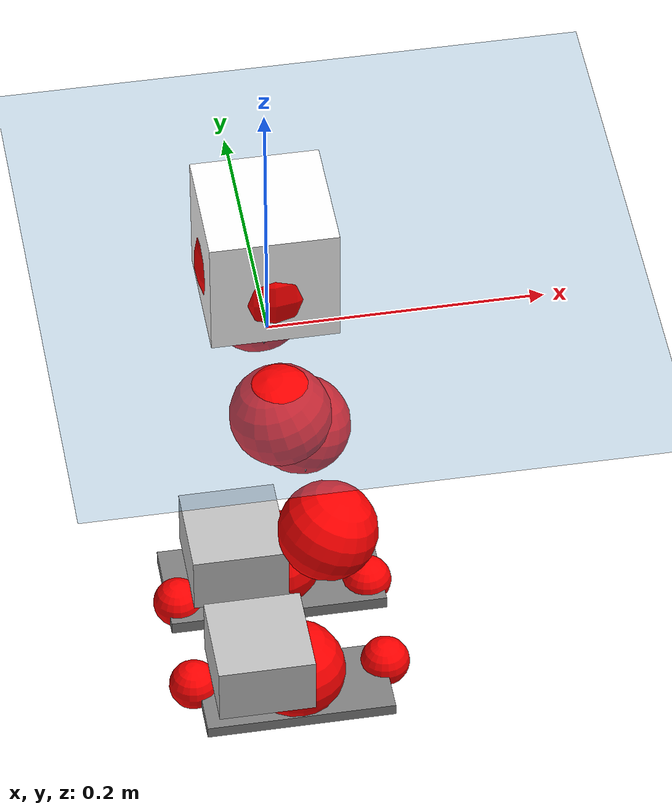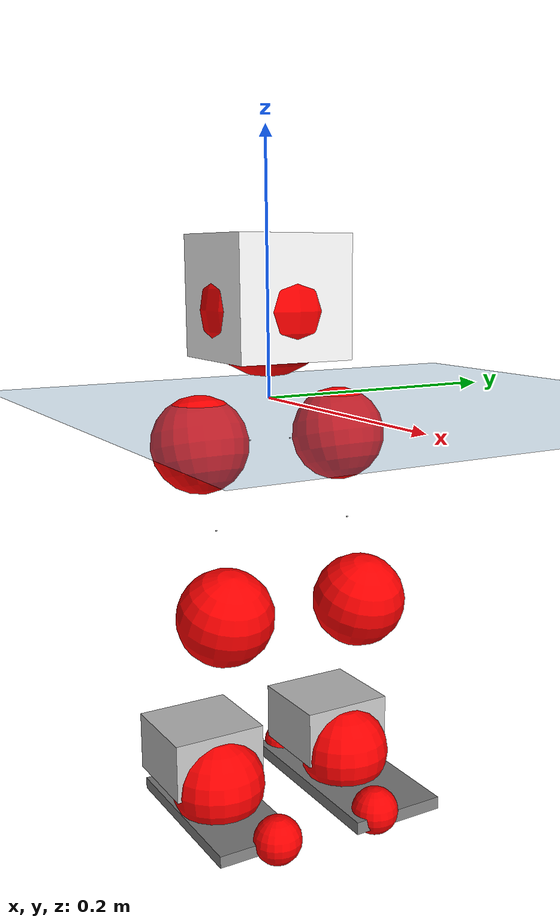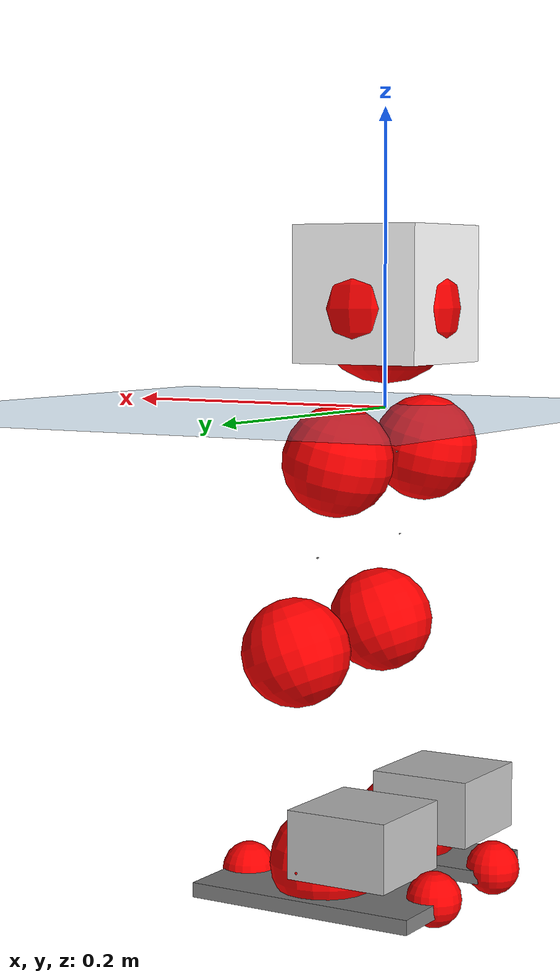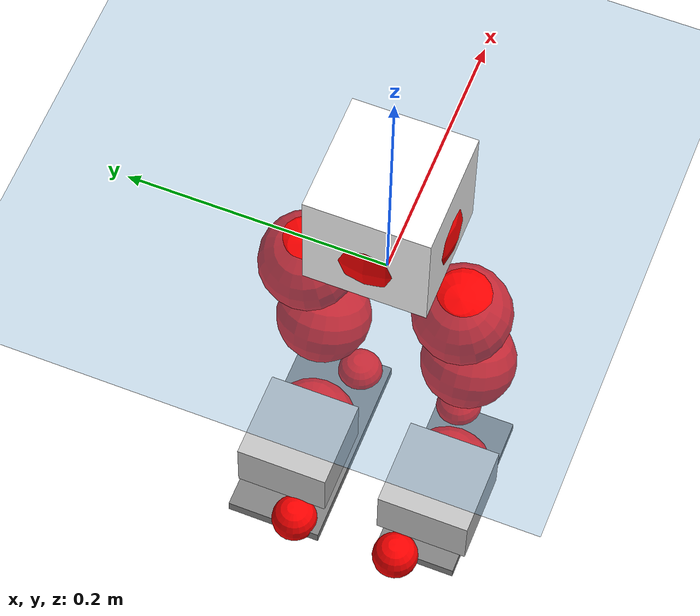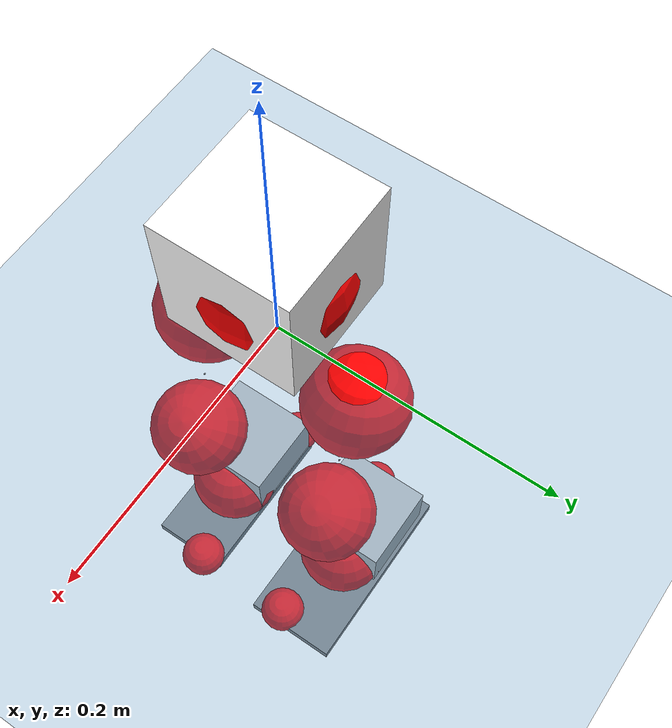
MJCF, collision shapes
<mujoco model="pi_12dof_release_v1">
  <compiler angle="radian" assetdir="assets" balanceinertia="true" inertiafromgeom="false"/>

  <option timestep="0.005" density="1.2" viscosity="2e-05"/>

  <size nkey="1"/>

  <visual>
    <quality shadowsize="8192"/>
    <map shadowclip="0.5"/>
  </visual>

  <default>
    <default class="/">
      <joint armature="0.01" damping="0.01" frictionloss="0.01"/>
      <geom contype="0" conaffinity="0" group="1" solref="-1000 -80"/>
      <site size="0.01 0.005 0.005" group="5"/>
      <general forcelimited="true" biastype="affine" gainprm="20" biasprm="0 -20 -0.5"/>
      <default class="foot">
        <geom size="0.0845 0.036 0.005" type="box" condim="6" group="4" priority="1" friction="0.9 0.2 0.2" solimp="0.015 1 0.005"/>
      </default>
      <default class="reward_collision_sphere">
        <geom group="5" rgba="1 0 0 1"/>
      </default>
    </default>
  </default>

  <asset>
    <texture type="skybox" colorspace="auto" name="//unnamed_texture_0" builtin="gradient" rgb1="0.95 0.95 0.95" rgb2="0.95 0.95 0.95" width="100" height="600"/>
    <texture type="2d" colorspace="auto" name="texplane" builtin="checker" rgb1="0.345 0.575 0.748" rgb2="0.345 0.575 0.748" markrgb="1 1 1" width="512" height="512"/>
    <material name="MatPlane" class="/" texture="texplane" texuniform="true" texrepeat="2 2" specular="0.9"/>
    <mesh name="baselink_1" class="/" file="baselink_1.STL"/>
    <mesh name="r_hip_pitch_link" class="/" file="r_hip_pitch_link.STL"/>
    <mesh name="r_hip_roll_link" class="/" file="r_hip_roll_link.STL"/>
    <mesh name="r_thigh_link" class="/" file="r_thigh_link.STL"/>
    <mesh name="r_calf_link" class="/" file="r_calf_link.STL"/>
    <mesh name="r_ankle_pitch_link" class="/" file="r_ankle_pitch_link.STL"/>
    <mesh name="r_ankle_roll_link" class="/" file="r_ankle_roll_link.STL"/>
    <mesh name="l_hip_pitch_link" class="/" file="l_hip_pitch_link.STL"/>
    <mesh name="l_hip_roll_link" class="/" file="l_hip_roll_link.STL"/>
    <mesh name="l_thigh_link" class="/" file="l_thigh_link.STL"/>
    <mesh name="l_calf_link" class="/" file="l_calf_link.STL"/>
    <mesh name="l_ankle_pitch_link" class="/" file="l_ankle_pitch_link.STL"/>
    <mesh name="l_ankle_roll_link" class="/" file="l_ankle_roll_link.STL"/>
  </asset>

  <worldbody>
    <geom name="floor" class="/" size="100 100 0.125" type="plane" group="0" material="MatPlane"/>
    <light name="toplight_shadow" class="/" pos="0 0 5" dir="0.0990148 0.0990148 -0.990148" type="directional" ambient="0.04 0.04 0.04" diffuse="0.55 0.55 0.55" specular="0.12 0.12 0.12"/>
    <light name="toplight_fill" class="/" pos="0 0 5" dir="0.0990148 0.0990148 -0.990148" type="directional" castshadow="false" ambient="0.04 0.04 0.04" diffuse="0.3 0.3 0.3" specular="0.08 0.08 0.08"/>
    <body name="trunk" pos="-0.000809849 0.000145348 0.000491434" quat="1 7.82045e-05 0.000100903 -5.90944e-05">
      <inertial pos="0.00283084 -0.00121955 0.0388875" quat="0.695798 0.0154673 0.00496562 0.718053" mass="1.66137" diaginertia="0.0134822 0.00212272 0.00322352"/>
      <joint name="//unnamed_joint_0" type="free"/>
      <geom name="//unnamed_geom_1" class="/" type="mesh" density="0" rgba="1 1 1 1" mesh="baselink_1"/>
      <geom name="//unnamed_geom_2" class="/" size="0.0459591 0.0459591 0.0459591" pos="0 0 0.0757106" type="box" rgba="1 1 1 1"/>
      <geom name="//unnamed_geom_3" class="reward_collision_sphere" size="0.050555" pos="0 0 0.0662468"/>
      <site name="imu" class="/" pos="-0.00105332 -0.0124432 0.00511362" size="0.00919182"/>
      <camera name="track" class="/" pos="0 -1.49802 0" quat="0.707107 0.707107 0 0" mode="trackcom"/>
      <camera name="ego_camera" class="/" pos="0.0796615 0 0.170349" quat="-0.5 -0.5 0.5 0.5"/>
      <body name="r_hip_pitch_link" pos="0.000441583 -0.0166509 -0.0315759" quat="0.992076 -0.000270551 -0.125636 0.000607788">
        <inertial pos="0.00138553 -0.0423863 0.000364958" quat="-0.021005 0.708308 -0.0307019 0.704923" mass="0.295483" diaginertia="0.000150765 2.3772e-05 6.44315e-05"/>
        <joint name="r_hip_pitch_joint" class="/" pos="0 0 0" axis="-0.00204868 -0.999974 -0.00695449" range="-1.75177 1.26194" armature="0.00933484" damping="0.00948784" frictionloss="0.00876058"/>
        <geom name="//unnamed_geom_4" class="/" type="mesh" density="0" rgba="0.75294 0.75294 0.75294 1" mesh="r_hip_pitch_link"/>
        <geom name="//unnamed_geom_5" class="/" size="0.000459591 0.000459591 0.000459591" type="box" rgba="0.75294 0.75294 0.75294 1"/>
        <body name="r_hip_roll_link" pos="0.000265548 -0.0414998 0.000137262" quat="1 -0.00012957 -3.28327e-05 -8.92293e-05">
          <inertial pos="-0.00124078 -0.002416 -0.0605725" quat="0.707779 -0.0819783 -0.0849119 0.696504" mass="0.303894" diaginertia="0.000453164 6.61029e-05 9.75542e-05"/>
          <joint name="r_hip_roll_joint" class="/" pos="0 0 0" axis="-0.999989 -0.00349138 0.00303039" range="-0.112892 0.539114" armature="0.00865869" damping="0.0114617" frictionloss="0.00966614"/>
          <geom name="//unnamed_geom_6" class="/" type="mesh" density="0" rgba="0.75294 0.75294 0.75294 1" mesh="r_hip_roll_link"/>
          <geom name="//unnamed_geom_7" class="/" size="0.000459591 0.000459591 0.000459591" type="box" rgba="0.75294 0.75294 0.75294 1"/>
          <geom name="//unnamed_geom_8" class="reward_collision_sphere" size="0.0367673"/>
          <body name="r_thigh_link" pos="0.00212836 0.00294762 -0.0644662" quat="1 7.66567e-05 7.4795e-06 0.000112723">
            <inertial pos="0.00106957 0.000826047 -0.0445306" quat="0.737076 0.675809 -0.000809774 0.000624095" mass="0.0895696" diaginertia="0.000169784 2.24306e-05 4.39416e-05"/>
            <joint name="r_thigh_joint" class="/" pos="0 0 0" axis="-0.00438465 -0.000121834 -0.99999" stiffness="0.0035804" range="-0.320691 0.576143" armature="0.00905765" damping="0" frictionloss="0.00804464"/>
            <geom name="//unnamed_geom_9" class="/" type="mesh" density="0" rgba="0.75294 0.75294 0.75294 1" mesh="r_thigh_link"/>
            <geom name="//unnamed_geom_10" class="/" size="0.000459591 0.000459591 0.000459591" type="box" rgba="0.75294 0.75294 0.75294 1"/>
            <body name="r_calf_link" pos="-0.00034776 -0.00127373 -0.0644134" quat="0.947648 -8.75276e-06 0.319318 -5.26025e-05">
              <inertial pos="0.000767981 -0.00105098 -0.0663012" quat="0.999885 -0.000416267 -0.000130643 0.0151412" mass="0.64803" diaginertia="0.00491945 0.000838827 0.000135807"/>
              <joint name="r_calf_joint" class="/" pos="0 0 0" axis="0.00411251 -0.999975 0.00568461" range="-1.60893 0.650429" armature="0.00858581" damping="0.0103933" frictionloss="0.00926109"/>
              <geom name="//unnamed_geom_11" class="/" type="mesh" density="0" rgba="0.75294 0.75294 0.75294 1" mesh="r_calf_link"/>
              <geom name="//unnamed_geom_12" class="/" size="0.000459591 0.000459591 0.000459591" type="box" rgba="0.75294 0.75294 0.75294 1"/>
              <geom name="//unnamed_geom_13" class="reward_collision_sphere" size="0.0367673"/>
              <body name="r_ankle_pitch_link" pos="0.000770889 0.000934272 -0.133609" quat="0.980103 -0.000250056 -0.198488 -0.000440157">
                <inertial pos="0.00546859 0.00272216 -0.00254599" quat="0.0143737 0.706803 -0.00533164 0.707244" mass="0.138669" diaginertia="0.000429586 5.3701e-05 9.33952e-05"/>
                <joint name="r_ankle_pitch_joint" class="/" pos="0 0 0" axis="0.00389986 -0.999984 -0.00416284" range="-1.294 0.549491" armature="0.0092463" damping="0.00995956" frictionloss="0.0100286"/>
                <geom name="//unnamed_geom_14" class="/" type="mesh" density="0" rgba="0.75294 0.75294 0.75294 1" mesh="r_ankle_pitch_link"/>
                <geom name="//unnamed_geom_15" class="/" size="0.0358481 0.0367673 0.0229796" type="box" rgba="0.75294 0.75294 0.75294 1"/>
                <body name="r_ankle_roll_link" pos="0.0801645 0.00145449 -0.00110863" quat="1 0.000121218 -6.5054e-05 1.18276e-05">
                  <inertial pos="-0.025544 0.000450337 -0.0112686" quat="0.559024 0.431543 0.433686 0.559624" mass="0.384223" diaginertia="0.001465 0.000242758 0.000202963"/>
                  <joint name="r_ankle_roll_joint" class="/" pos="0 0 0" axis="-0.999935 -0.00291254 0.011015" range="-0.14308 0.114677" armature="0.00816159" damping="0.0146748" frictionloss="0.00929552"/>
                  <geom name="//unnamed_geom_16" class="/" type="mesh" density="0" rgba="0.75294 0.75294 0.75294 1" mesh="r_ankle_roll_link"/>
                  <geom name="//unnamed_geom_17" class="/" type="mesh" rgba="0.75294 0.75294 0.75294 1" mesh="r_ankle_roll_link"/>
                  <geom name="right_foot" class="foot" size="0.0700761 0.0320497 0.00453223" pos="-0.0541698 0 -0.0416409"/>
                  <geom name="//unnamed_geom_19" class="reward_collision_sphere" size="0.0367673" pos="-0.0531077 0 -0.0189277"/>
                  <geom name="//unnamed_geom_20" class="reward_collision_sphere" size="0.0183836" pos="0.0159323 0.0149802 -0.0378553"/>
                  <geom name="//unnamed_geom_21" class="reward_collision_sphere" size="0.0183836" pos="-0.127458 0.0149802 -0.0378553"/>
                  <site name="right_foot" class="foot" pos="-0.0541698 0 -0.0416409" size="0.00919182"/>
                </body>
              </body>
            </body>
          </body>
        </body>
      </body>
      <body name="l_hip_pitch_link" pos="0.00095081 0.0180675 -0.0329347" quat="0.992178 -0.000196432 -0.124832 -1.42305e-05">
        <inertial pos="0.00115616 0.0397399 -0.00216367" quat="-0.0374163 0.705584 0.0297705 0.707012" mass="0.309103" diaginertia="0.000176604 2.45058e-05 7.6645e-05"/>
        <joint name="l_hip_pitch_joint" class="/" pos="0 0 0" axis="-0.00321277 0.999994 -0.00113256" stiffness="0.00087263" range="-1.22609 1.7639" armature="0.00971221" damping="0.0136153" frictionloss="0.00916773"/>
        <geom name="//unnamed_geom_22" class="/" type="mesh" density="0" rgba="0.75294 0.75294 0.75294 1" mesh="l_hip_pitch_link"/>
        <geom name="//unnamed_geom_23" class="/" size="0.000459591 0.000459591 0.000459591" type="box" rgba="0.75294 0.75294 0.75294 1"/>
        <body name="l_hip_roll_link" pos="0.00114528 0.0428116 0.000182578" quat="1 -1.8978e-05 2.24156e-06 -6.93704e-06">
          <inertial pos="-0.00319285 -0.000743605 -0.0603114" quat="0.702022 -0.0706341 -0.0856962 0.703443" mass="0.299299" diaginertia="0.00043299 6.46946e-05 9.39577e-05"/>
          <joint name="l_hip_roll_joint" class="/" pos="0 0 0" axis="-1 -1.94937e-05 6.59775e-05" range="-0.545649 0.142285" armature="0.00935009" damping="0" frictionloss="0.00918677"/>
          <geom name="//unnamed_geom_24" class="/" type="mesh" density="0" rgba="0.75294 0.75294 0.75294 1" mesh="l_hip_roll_link"/>
          <geom name="//unnamed_geom_25" class="/" size="0.000459591 0.000459591 0.000459591" type="box" rgba="0.75294 0.75294 0.75294 1"/>
          <geom name="//unnamed_geom_26" class="reward_collision_sphere" size="0.0367673"/>
          <body name="l_thigh_link" pos="-0.000439976 -0.00135972 -0.0667125" quat="1 1.0932e-05 0.000101101 -5.3481e-05">
            <inertial pos="0.00019068 -0.00171114 -0.0445351" quat="0.675438 0.737384 0.00689331 0.00117145" mass="0.0864321" diaginertia="0.000168538 2.20614e-05 4.45546e-05"/>
            <joint name="l_thigh_joint" class="/" pos="0 0 0" axis="-5.17006e-05 -9.81596e-05 -1" range="-0.605949 0.304514" armature="0.00912267" damping="0.00348798" frictionloss="0.00904265"/>
            <geom name="//unnamed_geom_27" class="/" type="mesh" density="0" rgba="0.75294 0.75294 0.75294 1" mesh="l_thigh_link"/>
            <geom name="//unnamed_geom_28" class="/" size="0.000459591 0.000459591 0.000459591" type="box" rgba="0.75294 0.75294 0.75294 1"/>
            <body name="l_calf_link" pos="-0.00052384 0.00112408 -0.066412" quat="0.947727 0.000388501 0.319082 2.01351e-05">
              <inertial pos="0.000153723 0.00392446 -0.0675289" quat="0.999982 0.0032965 -0.000358049 0.00506106" mass="0.606637" diaginertia="0.00462397 0.00080372 0.000128289"/>
              <joint name="l_calf_joint" class="/" pos="0 0 0" axis="-0.000452905 1 -0.00012334" stiffness="0.00300823" range="-0.600847 1.69424" armature="0.00925267" damping="0.00590408" frictionloss="0.00871491"/>
              <geom name="//unnamed_geom_29" class="/" type="mesh" density="0" rgba="0.75294 0.75294 0.75294 1" mesh="l_calf_link"/>
              <geom name="//unnamed_geom_30" class="/" size="0.000459591 0.000459591 0.000459591" type="box" rgba="0.75294 0.75294 0.75294 1"/>
              <geom name="//unnamed_geom_31" class="reward_collision_sphere" size="0.0367673"/>
              <body name="l_ankle_pitch_link" pos="-0.00108319 0.000565082 -0.130416" quat="0.980066 7.67975e-06 -0.198671 -1.56378e-06">
                <inertial pos="0.00490912 -3.81983e-05 -0.000290848" quat="-0.00221923 0.707104 0.00222193 0.707102" mass="0.131496" diaginertia="0.000404185 5.09539e-05 9.08286e-05"/>
                <joint name="l_ankle_pitch_joint" class="/" pos="0 0 0" axis="0.00142475 0.999999 -0.000517645" stiffness="0.000228278" range="-0.547857 1.30276" armature="0.00860054" damping="0.00794864" frictionloss="0.00890895"/>
                <geom name="//unnamed_geom_32" class="/" type="mesh" density="0" rgba="0.75294 0.75294 0.75294 1" mesh="l_ankle_pitch_link"/>
                <geom name="//unnamed_geom_33" class="/" size="0.0358481 0.0367673 0.0229796" type="box" rgba="0.75294 0.75294 0.75294 1"/>
                <body name="l_ankle_roll_link" pos="0.082206 0.00017743 0.000652974" quat="1 -0.00021877 0.000170521 -3.96573e-05">
                  <inertial pos="-0.0266027 -0.00049379 -0.0137114" quat="0.559777 0.430824 0.434269 0.558973" mass="0.394851" diaginertia="0.0015303 0.00023992 0.000214995"/>
                  <joint name="l_ankle_roll_joint" class="/" pos="0 0 0" axis="-0.999991 0.000753981 -0.00410149" range="-0.170964 0.152788" armature="0.00964785" damping="0.00641717" frictionloss="0.00915702"/>
                  <geom name="//unnamed_geom_34" class="/" type="mesh" density="0" rgba="0.75294 0.75294 0.75294 1" mesh="l_ankle_roll_link"/>
                  <geom name="//unnamed_geom_35" class="/" type="mesh" rgba="0.75294 0.75294 0.75294 1" mesh="l_ankle_roll_link"/>
                  <geom name="left_foot" class="foot" size="0.0812895 0.0380798 0.00496537" pos="-0.0541698 0 -0.0416409"/>
                  <geom name="//unnamed_geom_37" class="reward_collision_sphere" size="0.0367673" pos="-0.0531077 0 -0.0189277"/>
                  <geom name="//unnamed_geom_38" class="reward_collision_sphere" size="0.0183836" pos="0.0159323 -0.0149802 -0.0378553"/>
                  <geom name="//unnamed_geom_39" class="reward_collision_sphere" size="0.0183836" pos="-0.127458 -0.0149802 -0.0378553"/>
                  <site name="left_foot" class="foot" pos="-0.0541698 0 -0.0416409" size="0.00919182"/>
                </body>
              </body>
            </body>
          </body>
        </body>
      </body>
    </body>
  </worldbody>

  <contact>
    <pair class="/" geom1="floor" geom2="right_foot" name="//unnamed_contact_1"/>
    <pair class="/" geom1="floor" geom2="left_foot" name="//unnamed_contact_0"/>
  </contact>

  <actuator>
    <general name="r_hip_pitch_joint" class="/" joint="r_hip_pitch_joint" forcerange="-19.355 19.355" gainprm="18.5989" biasprm="0 -18.5989 -0.473713"/>
    <general name="r_hip_roll_joint" class="/" joint="r_hip_roll_joint" forcerange="-17.9363 17.9363" gainprm="18.5989" biasprm="0 -18.5989 -0.473713"/>
    <general name="r_thigh_joint" class="/" joint="r_thigh_joint" forcerange="-19.0781 19.0781" gainprm="18.5989" biasprm="0 -18.5989 -0.473713"/>
    <general name="r_calf_joint" class="/" joint="r_calf_joint" forcerange="-20.031 20.031" gainprm="18.5989" biasprm="0 -18.5989 -0.473713"/>
    <general name="r_ankle_pitch_joint" class="/" joint="r_ankle_pitch_joint" forcerange="-18.5436 18.5436" gainprm="18.5989" biasprm="0 -18.5989 -0.473713"/>
    <general name="r_ankle_roll_joint" class="/" joint="r_ankle_roll_joint" forcerange="-19.0585 19.0585" gainprm="18.5989" biasprm="0 -18.5989 -0.473713"/>
    <general name="l_hip_pitch_joint" class="/" joint="l_hip_pitch_joint" forcerange="-19.0045 19.0045" gainprm="18.5989" biasprm="0 -18.5989 -0.473713"/>
    <general name="l_hip_roll_joint" class="/" joint="l_hip_roll_joint" forcerange="-20.5499 20.5499" gainprm="18.5989" biasprm="0 -18.5989 -0.473713"/>
    <general name="l_thigh_joint" class="/" joint="l_thigh_joint" forcerange="-17.7939 17.7939" gainprm="18.5989" biasprm="0 -18.5989 -0.473713"/>
    <general name="l_calf_joint" class="/" joint="l_calf_joint" forcerange="-19.686 19.686" gainprm="18.5989" biasprm="0 -18.5989 -0.473713"/>
    <general name="l_ankle_pitch_joint" class="/" joint="l_ankle_pitch_joint" forcerange="-19.3472 19.3472" gainprm="18.5989" biasprm="0 -18.5989 -0.473713"/>
    <general name="l_ankle_roll_joint" class="/" joint="l_ankle_roll_joint" forcerange="-21.1163 21.1163" gainprm="18.5989" biasprm="0 -18.5989 -0.473713"/>
  </actuator>

  <sensor>
    <gyro site="imu" name="imu_angular_velocity"/>
    <velocimeter site="imu" name="imu_linear_velocity"/>
    <framelinvel objtype="site" objname="left_foot" name="left_foot_global_linear_velocity"/>
    <framelinvel objtype="site" objname="right_foot" name="right_foot_global_linear_velocity"/>
  </sensor>

  <keyframe>
    <key name="home" qpos="0 0 0.291 1 0 0 0 0.4 0 0 -0.8 0.4 0 -0.4 0 0 0.8 -0.4 0"/>
  </keyframe>
</mujoco>
